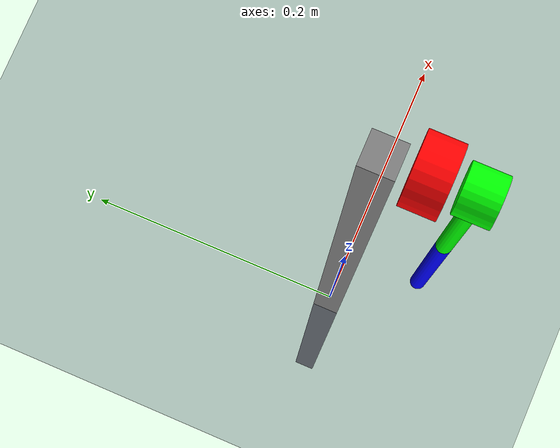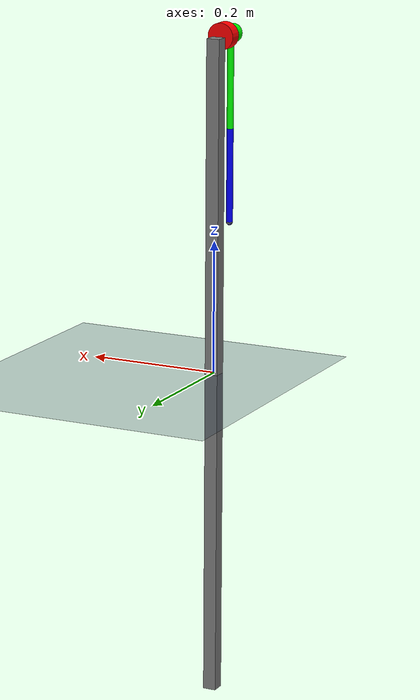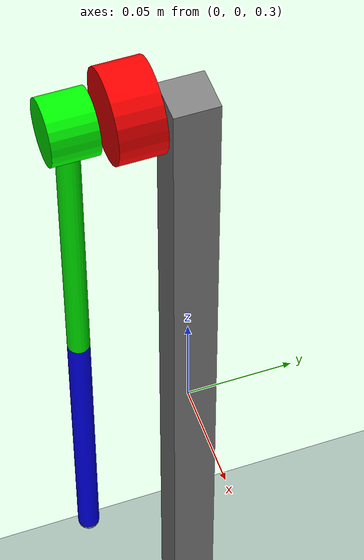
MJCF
<mujoco model="leg">
    <option timestep="0.00025"/>
    <asset>
        <texture name="texplane" type="2d" builtin="checker" rgb1=".2 .3 .4" rgb2=".1 0.15 0.2" width="512" height="512" mark="cross" markrgb=".8 .8 .8"/>
        <material name="matplane" texture="texplane" texrepeat="4 4" texuniform="true"/>
    </asset>
    <worldbody>
        <geom name="ground" pos="0 0 0" size="0 0 .25" type="plane" material="matplane"/>
        <geom name="rod" type="box" pos="0 0 0" size="0.01 0.01 0.5"/>
        <light directional="false" diffuse=".2 .2 .2" specular="0 0 0" pos="0 0 5" dir="0 0 -1" castshadow="false"/>
        <light directional="false" diffuse=".8 .8 .8" specular="0.3 0.3 0.3" pos="0 0 4.0" dir="0 0 -1"/>
        <body name="base" pos="0 -0.025 0.5">
            <geom type="cylinder" pos="0 0 0" size="0.02 0.01" zaxis="0 1 0" rgba="1 0 0 1"/>
            <inertial pos="0 0 0" mass="0.4715" diaginertia="0.000078 0.000078 0.000078"/>
            <joint name="slider" type="slide" axis="0 0 1" frictionloss="0.55" damping="0.55" ref="0.5"/>
            <site name="base-center" pos="0 0 0"/>
            <body name="upperleg" pos="0 -0.025 0">
                <geom type="cylinder" pos="0 0 0" size="0.014 0.01" zaxis="0 1 0" rgba="0 1 0 1"/>
                <geom name="upperleg-limb" type="capsule" pos="0 0 -0.07" size="0.005 0.07 0" rgba="0 1 0 1"/>
                <inertial pos="0 -0.057 0" mass="0.315" diaginertia="0.0010888 0.0010888 0.000001"/>
                <joint name="hip" type="hinge" axis="0 -1 0" frictionloss="0.1" damping="0.01" ref="-90" armature="2.2e-6"/>
                <site name="hip-center" pos="0 0 0"/>
                <body name="lowerleg" pos="0 0 -0.14">
                    <geom name="lowerleg-limb" type="capsule" pos="0 0 -0.07" size="0.005 0.07 0" rgba="0 0 1 1"/>
                    <inertial pos="0 -0.016 0" mass="0.034" diaginertia="0.0008888 0.0008888 0.0000005"/>
                    <joint name="knee" type="hinge" axis="0 -1 0" frictionloss="0.1" damping="0.04" ref="0" armature="1.157e-5"/>
                    <site name="knee-center" pos="0 0 0"/>
                    <site name="foot-center" pos="0 0 -0.14"/>
                </body>
            </body>
        </body>
    </worldbody>
    <sensor>
        <force name="rod-to-base" site="base-center"/>
        <force name="base-to-hip" site="hip-center"/>
        <velocimeter name="base-vel" site="base-center"/>
        <torque name="hip_tau" site="hip-center"/>
        <torque name="knee_tau" site="knee-center"/>
    </sensor>
    <contact>
        <pair name="ground-contact" geom1="ground" geom2="lowerleg-limb" friction="0.7 0.7" solref="0.015 0.18" solimp="0.01 0.95 0.001"/>
    </contact>
    <actuator>
        <motor name="torquehip" joint="hip" gear="1" ctrlrange="-1 1" ctrllimited="false"/>
    </actuator>
    <actuator>
        <motor name="torqueknee" joint="knee" gear="1" ctrlrange="-1 1" ctrllimited="false"/>
    </actuator>
</mujoco>
